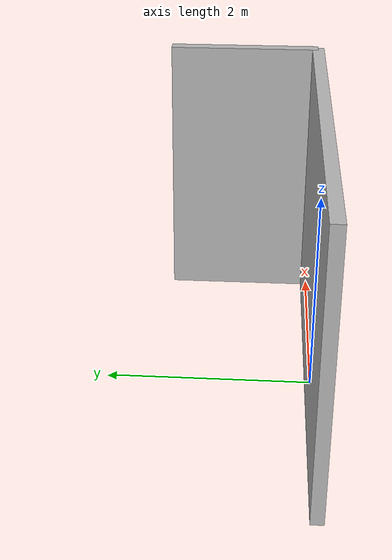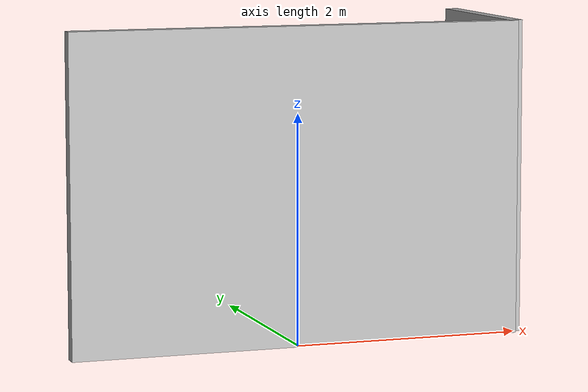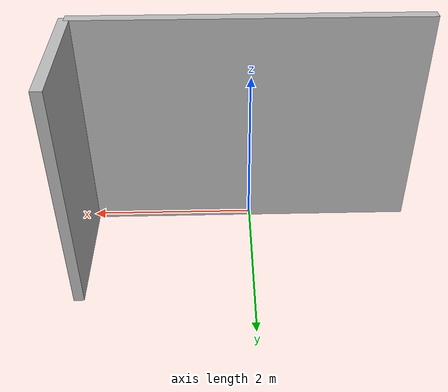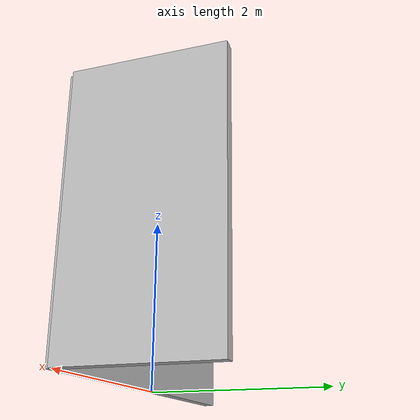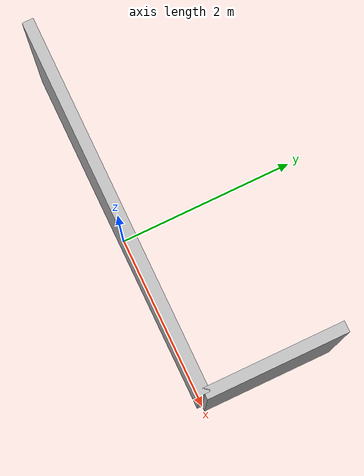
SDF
<?xml version="1.0"?>
<sdf version="1.9">
  <model name="maze_wall">
    <static>true</static>

    <!-- segment 1 -->
    <link name="seg1">
      <pose>0 0 1.375 0 0 0</pose>
      <collision name="col">
        <geometry>
          <box>
            <size>4 0.12 2.75</size>
          </box>
        </geometry>
      </collision>
      <visual name="vis">
        <geometry>
          <box>
            <size>4 0.12 2.75</size>
          </box>
        </geometry>
      </visual>
    </link>

    <!-- segment 2 (turn out) -->
    <link name="seg2">
      <pose>2 0.75 1.375 0 0 1.5708</pose>
      <collision name="col">
        <geometry>
          <box>
            <size>1.5 0.12 2.75</size>
          </box>
        </geometry>
      </collision>
      <visual name="vis">
        <geometry>
          <box>
            <size>1.5 0.12 2.75</size>
          </box>
        </geometry>
      </visual>
    </link>

  </model>
</sdf>
